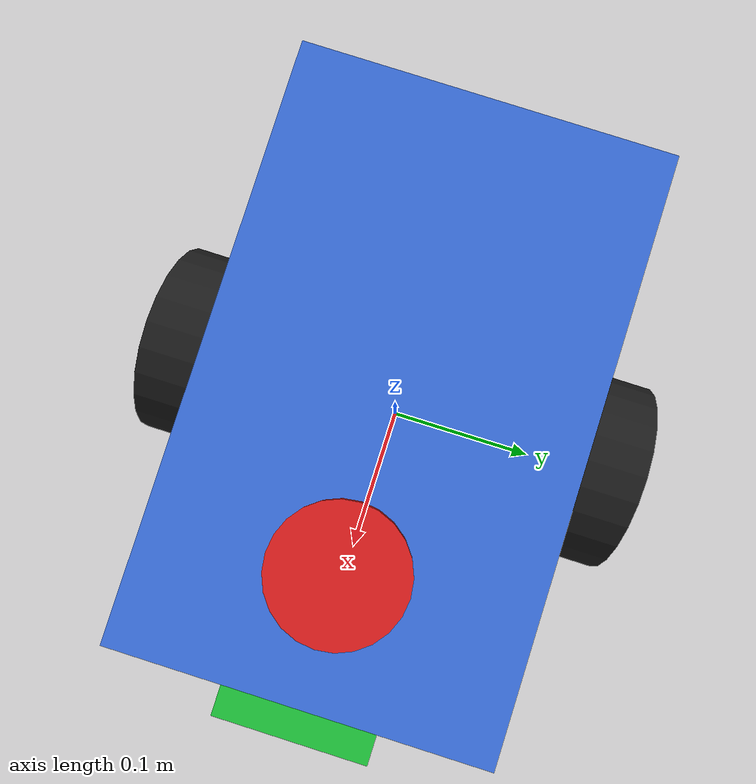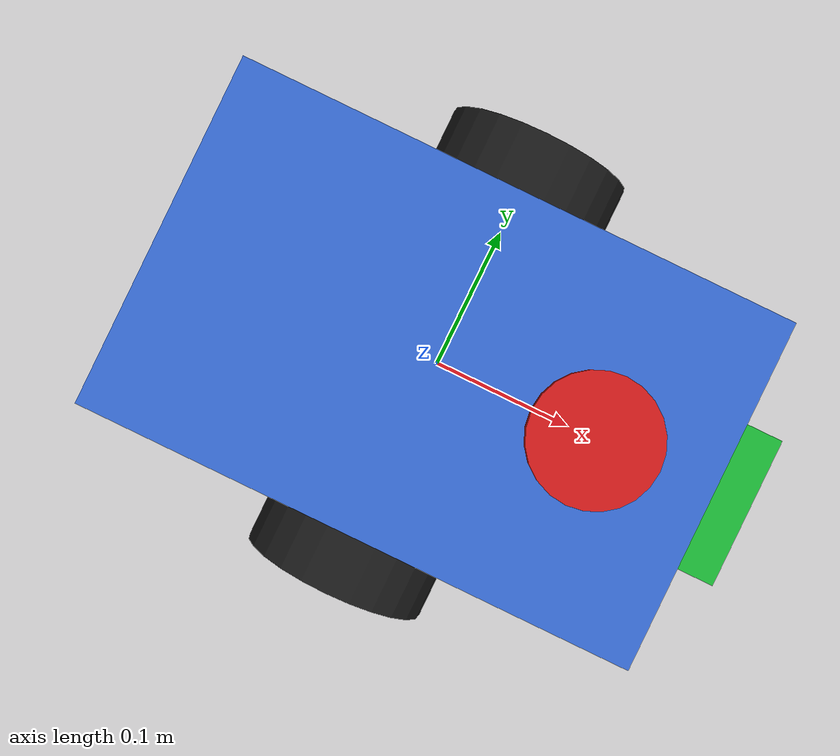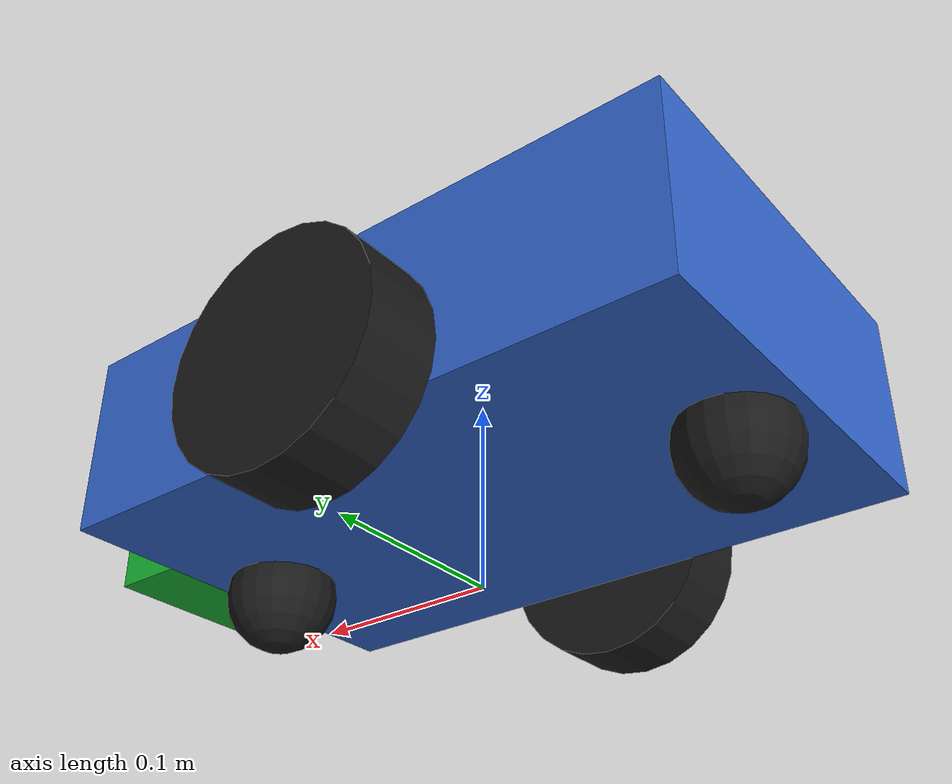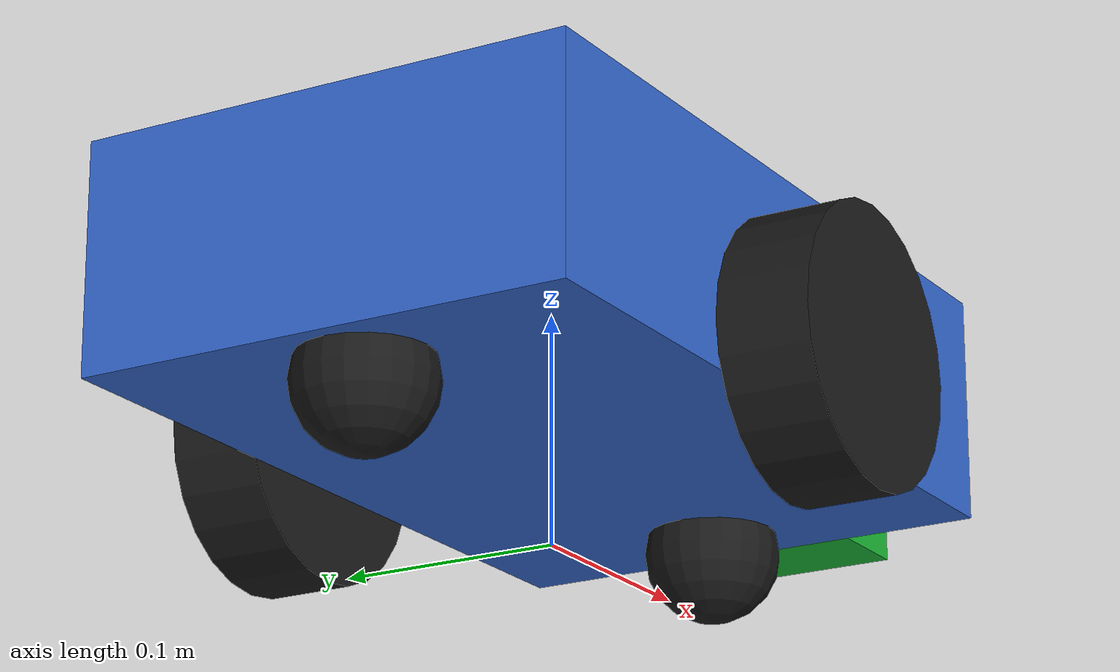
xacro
<?xml version="1.0"?>
<!--
  RoboFetch differential-drive robot.
  A xacro is a URDF with macros/variables so we don't repeat ourselves.
  Expand it to plain URDF with:  xacro robofetch.urdf.xacro
-->
<robot name="robofetch" xmlns:xacro="http://www.ros.org/wiki/xacro">

  <!-- ===================== Tunable dimensions (edit here, not below) ===================== -->
  <xacro:property name="base_len"   value="0.35"/>   <!-- x: front-back -->
  <xacro:property name="base_wid"   value="0.22"/>   <!-- y: left-right -->
  <xacro:property name="base_hgt"   value="0.10"/>   <!-- z: height     -->
  <xacro:property name="base_mass"  value="3.0"/>

  <xacro:property name="wheel_radius"    value="0.06"/>
  <xacro:property name="wheel_width"     value="0.04"/>
  <xacro:property name="wheel_mass"      value="0.5"/>
  <xacro:property name="wheel_separation" value="0.26"/>  <!-- distance between the two wheels (y) -->
  <xacro:property name="wheel_xoff"      value="0.0"/>

  <xacro:property name="caster_radius" value="0.03"/>
  <!-- Two casters (front and rear) keep the robot level without carrying much load. -->
  <xacro:property name="caster_xoff"   value="0.14"/>

  <!-- Lift the chassis body so it clears the ground; with the box centred on base_link
       there was only 1 cm of clearance and it scraped//dragged during motion. -->
  <xacro:property name="body_zoff"     value="0.03"/>
  <!-- Note: `pi` is a xacro built-in constant, so we don't define it here. -->

  <!-- ===================== Reusable inertia macros ===================== -->
  <xacro:macro name="box_inertia" params="m x y z">
    <inertial>
      <mass value="${m}"/>
      <inertia ixx="${(m/12.0)*(y*y+z*z)}" ixy="0" ixz="0"
               iyy="${(m/12.0)*(x*x+z*z)}" iyz="0"
               izz="${(m/12.0)*(x*x+y*y)}"/>
    </inertial>
  </xacro:macro>

  <xacro:macro name="cylinder_inertia" params="m r l">
    <inertial>
      <mass value="${m}"/>
      <inertia ixx="${(m/12.0)*(3*r*r+l*l)}" ixy="0" ixz="0"
               iyy="${(m/12.0)*(3*r*r+l*l)}" iyz="0"
               izz="${(m/2.0)*(r*r)}"/>
    </inertial>
  </xacro:macro>

  <xacro:macro name="sphere_inertia" params="m r">
    <inertial>
      <mass value="${m}"/>
      <inertia ixx="${(2.0/5.0)*m*r*r}" ixy="0" ixz="0"
               iyy="${(2.0/5.0)*m*r*r}" iyz="0"
               izz="${(2.0/5.0)*m*r*r}"/>
    </inertial>
  </xacro:macro>

  <!-- ===================== base_footprint (ground contact reference) ===================== -->
  <!-- Nav2/AMCL conventions like a frame at ground level. base_link is lifted by wheel_radius. -->
  <link name="base_footprint"/>

  <joint name="base_joint" type="fixed">
    <parent link="base_footprint"/>
    <child  link="base_link"/>
    <origin xyz="0 0 ${wheel_radius}" rpy="0 0 0"/>
  </joint>

  <!-- ===================== Chassis ===================== -->
  <link name="base_link">
    <visual>
      <origin xyz="0 0 ${body_zoff}"/>
      <geometry><box size="${base_len} ${base_wid} ${base_hgt}"/></geometry>
      <material name="blue"><color rgba="0.2 0.4 0.8 1"/></material>
    </visual>
    <collision>
      <origin xyz="0 0 ${body_zoff}"/>
      <geometry><box size="${base_len} ${base_wid} ${base_hgt}"/></geometry>
    </collision>
    <xacro:box_inertia m="${base_mass}" x="${base_len}" y="${base_wid}" z="${base_hgt}"/>
  </link>

  <!-- ===================== Wheel macro (used for left & right) ===================== -->
  <xacro:macro name="wheel" params="prefix y_reflect">
    <link name="${prefix}_wheel">
      <visual>
        <origin rpy="${pi/2} 0 0"/>
        <geometry><cylinder radius="${wheel_radius}" length="${wheel_width}"/></geometry>
        <material name="dark"><color rgba="0.1 0.1 0.1 1"/></material>
      </visual>
      <collision>
        <origin rpy="${pi/2} 0 0"/>
        <geometry><cylinder radius="${wheel_radius}" length="${wheel_width}"/></geometry>
      </collision>
      <xacro:cylinder_inertia m="${wheel_mass}" r="${wheel_radius}" l="${wheel_width}"/>
    </link>

    <joint name="${prefix}_wheel_joint" type="continuous">
      <parent link="base_link"/>
      <child  link="${prefix}_wheel"/>
      <!-- wheel center is at base_link z=0, i.e. wheel_radius above the ground -->
      <origin xyz="${wheel_xoff} ${y_reflect*wheel_separation/2} 0" rpy="0 0 0"/>
      <axis xyz="0 1 0"/>
    </joint>
  </xacro:macro>

  <xacro:wheel prefix="left"  y_reflect="1"/>
  <xacro:wheel prefix="right" y_reflect="-1"/>

  <!-- ===================== Casters (passive spheres, front + rear) ===================== -->
  <xacro:macro name="caster" params="prefix x_pos">
    <link name="${prefix}_caster">
      <visual>
        <geometry><sphere radius="${caster_radius}"/></geometry>
        <material name="dark"><color rgba="0.1 0.1 0.1 1"/></material>
      </visual>
      <collision>
        <geometry><sphere radius="${caster_radius}"/></geometry>
      </collision>
      <xacro:sphere_inertia m="0.1" r="${caster_radius}"/>
    </link>

    <joint name="${prefix}_caster_joint" type="fixed">
      <parent link="base_link"/>
      <child  link="${prefix}_caster"/>
      <!-- lower it so its bottom touches the ground: z = -(wheel_radius - caster_radius) -->
      <origin xyz="${x_pos} 0 ${-(wheel_radius - caster_radius)}" rpy="0 0 0"/>
    </joint>
  </xacro:macro>

  <xacro:caster prefix="front" x_pos="${caster_xoff}"/>
  <xacro:caster prefix="rear"  x_pos="${-caster_xoff}"/>

  <!-- ===================== 2D Lidar mount ===================== -->
  <link name="lidar_link">
    <visual>
      <geometry><cylinder radius="0.04" length="0.04"/></geometry>
      <material name="red"><color rgba="0.8 0.1 0.1 1"/></material>
    </visual>
    <collision>
      <geometry><cylinder radius="0.04" length="0.04"/></geometry>
    </collision>
    <xacro:cylinder_inertia m="0.1" r="0.04" l="0.04"/>
  </link>

  <joint name="lidar_joint" type="fixed">
    <parent link="base_link"/>
    <child  link="lidar_link"/>
    <origin xyz="0.10 0 ${base_hgt/2 + 0.02}" rpy="0 0 0"/>
  </joint>

  <!-- ===================== Gripper link (item attaches here in M3) ===================== -->
  <link name="gripper_link">
    <visual>
      <geometry><box size="0.04 0.10 0.04"/></geometry>
      <material name="green"><color rgba="0.1 0.7 0.2 1"/></material>
    </visual>
    <collision>
      <geometry><box size="0.04 0.10 0.04"/></geometry>
    </collision>
    <xacro:box_inertia m="0.1" x="0.04" y="0.10" z="0.04"/>
  </link>

  <joint name="gripper_joint" type="fixed">
    <parent link="base_link"/>
    <child  link="gripper_link"/>
    <origin xyz="${base_len/2 + 0.02} 0 0" rpy="0 0 0"/>
  </joint>

  <!-- ===================== Gazebo (Harmonic) plugins & sensor ===================== -->
  <xacro:include filename="$(find robofetch_description)/urdf/robofetch.gazebo.xacro"/>

</robot>
